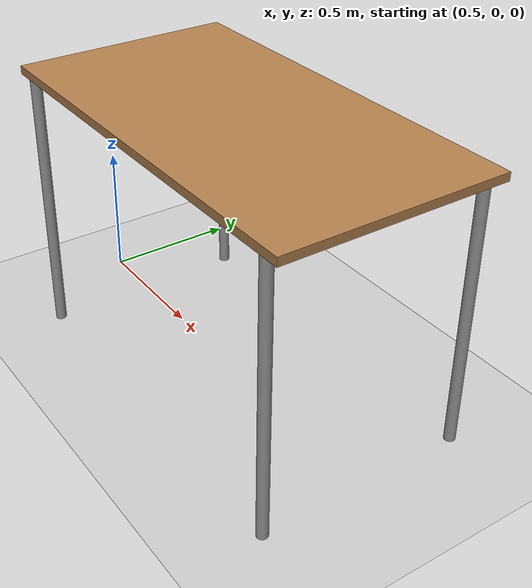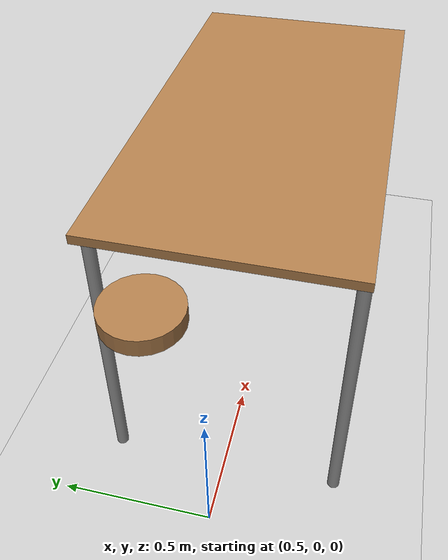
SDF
<?xml version="1.0" ?>
<sdf version="1.4">
	<world name="saucepan_setup">
		<!-- A global light source -->
		<include>
			<uri>model://sun</uri>
		</include>
		<!-- A ground plane -->
		<include>
			<uri>model://ground_plane</uri>
		</include>
		<!-- A table to hold things -->
		<include>
			<uri>model://low_table</uri>
			<name>low_table</name>
			<pose>1.4 0 0 0 0 0</pose>
		</include>
		<!-- A table to hold things -->
		<include>
			<uri>model://saucepan</uri>
			<name>saucepan</name>
			<pose>0.62 0.2 0.8 0 0 -1.57079632679</pose>
		</include>
		<!-- Shadows disabled -->
		<scene>
			<shadows>0</shadows>
		</scene>
		<!-- Camera position -->
		<gui>
			<camera name="camera1">
				<pose>2.6319 -1.80076 1.48357 0 0.292 2.4</pose>
			</camera>
		</gui>
	</world>
</sdf>

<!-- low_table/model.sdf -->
<sdf version="1.5">
  <model name="low_table">
    <static>true</static>
    <link name="link">
      <collision name="surface">
        <pose>0 0 1.0 0 0 0</pose>
        <geometry>
          <box>
            <size>1.5 0.8 0.03</size>
          </box>
        </geometry>
        <surface>
          <friction>
            <ode>
              <mu>0.6</mu>
              <mu2>0.6</mu2>
            </ode>
          </friction>
        </surface>
      </collision>
      <visual name="visual1">
        <pose>0 0 1.0 0 0 0</pose>
        <geometry>
          <box>
            <size>1.5 0.8 0.03</size>
          </box>
        </geometry>
        <material>
          <script>
            <uri>file://media/materials/scripts/gazebo.material</uri>
            <name>Gazebo/Wood</name>
          </script>
        </material>
      </visual>
      <collision name="front_left_leg">
        <pose>0.68 0.38 0.5 0 0 0</pose>
        <geometry>
          <cylinder>
            <radius>0.02</radius>
            <length>1.0</length>
          </cylinder>
        </geometry>
      </collision>
      <visual name="front_left_leg">
        <pose>0.68 0.38 0.5 0 0 0</pose>
        <geometry>
          <cylinder>
            <radius>0.02</radius>
            <length>1.0</length>
          </cylinder>
        </geometry>
        <material>
          <script>
            <uri>file://media/materials/scripts/gazebo.material</uri>
            <name>Gazebo/Grey</name>
          </script>
        </material>
      </visual>
      <collision name="front_right_leg">
        <pose>0.68 -0.38 0.5 0 0 0</pose>
        <geometry>
          <cylinder>
            <radius>0.02</radius>
            <length>1.0</length>
          </cylinder>
        </geometry>
      </collision>
      <visual name="front_right_leg">
        <pose>0.68 -0.38 0.5 0 0 0</pose>
        <geometry>
          <cylinder>
            <radius>0.02</radius>
            <length>1.0</length>
          </cylinder>
        </geometry>
        <material>
          <script>
            <uri>file://media/materials/scripts/gazebo.material</uri>
            <name>Gazebo/Grey</name>
          </script>
        </material>
      </visual>
      <collision name="back_right_leg">
        <pose>-0.68 -0.38 0.5 0 0 0</pose>
        <geometry>
          <cylinder>
            <radius>0.02</radius>
            <length>1.0</length>
          </cylinder>
        </geometry>
      </collision>
      <visual name="back_right_leg">
        <pose>-0.68 -0.38 0.5 0 0 0</pose>
        <geometry>
          <cylinder>
            <radius>0.02</radius>
            <length>1.0</length>
          </cylinder>
        </geometry>
        <material>
          <script>
            <uri>file://media/materials/scripts/gazebo.material</uri>
            <name>Gazebo/Grey</name>
          </script>
        </material>
      </visual>
      <collision name="back_left_leg">
        <pose>-0.68 0.38 0.5 0 0 0</pose>
        <geometry>
          <cylinder>
            <radius>0.02</radius>
            <length>1.0</length>
          </cylinder>
        </geometry>
      </collision>
      <visual name="back_left_leg">
        <pose>-0.68 0.38 0.5 0 0 0</pose>
        <geometry>
          <cylinder>
            <radius>0.02</radius>
            <length>1.0</length>
          </cylinder>
        </geometry>
        <material>
          <script>
            <uri>file://media/materials/scripts/gazebo.material</uri>
            <name>Gazebo/Grey</name>
          </script>
        </material>
      </visual>
    </link>
  </model>
</sdf>

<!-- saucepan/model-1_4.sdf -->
<sdf version="1.4">
	<model name="saucepan">
		<link name="link">
			<inertial>
				<mass>0.1</mass>
			</inertial>
			<collision name="collision">
				<geometry>
					<cylinder>
						<radius>0.127</radius>
						<length>0.058</length>
					</cylinder>
				</geometry>
			</collision>
			<visual name="visual">
				<geometry>
					<cylinder>
						<radius>0.127</radius>
						<length>0.058</length>
					</cylinder>
				</geometry>
				<material>
					<script>
						<uri>file://media/materials/scripts/gazebo.material</uri>
						<name>Gazebo/Wood</name>
					</script>
				</material>
			</visual>
		</link>
	</model>
</sdf>
